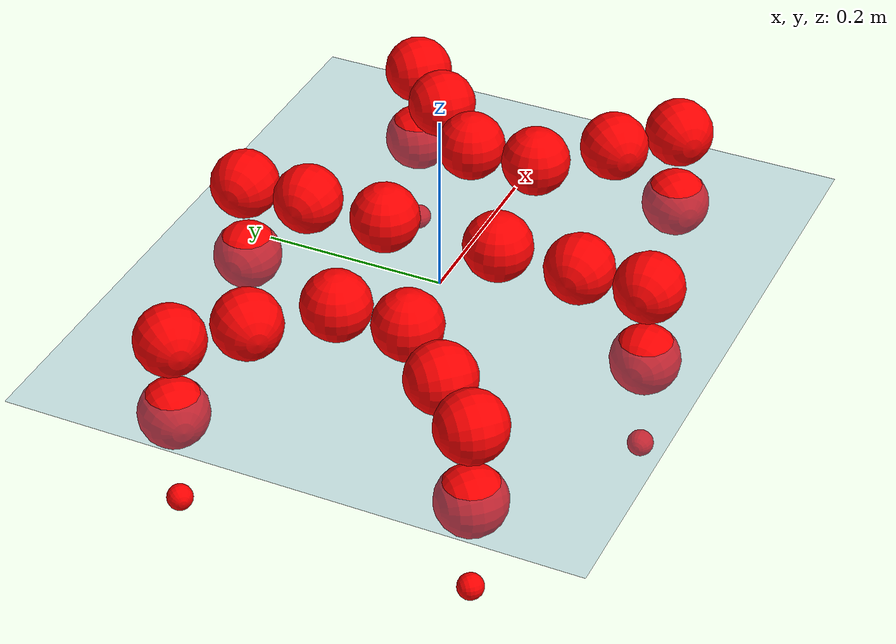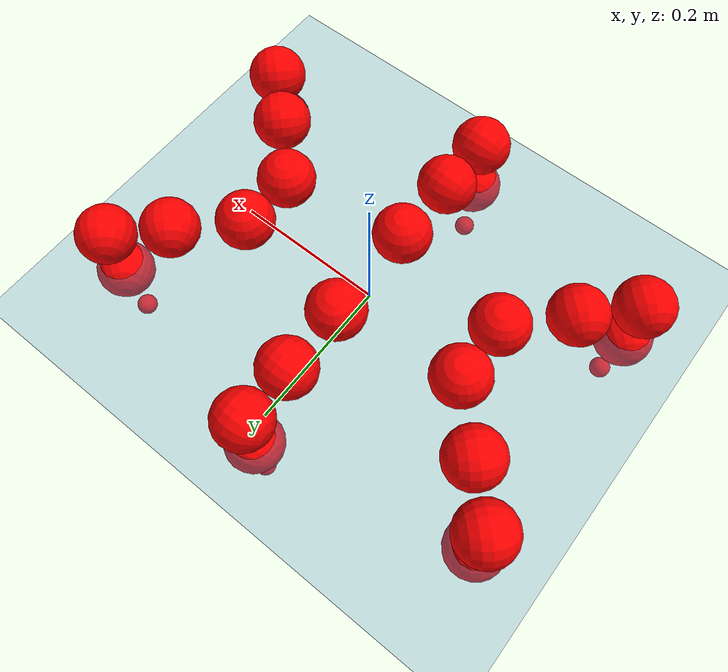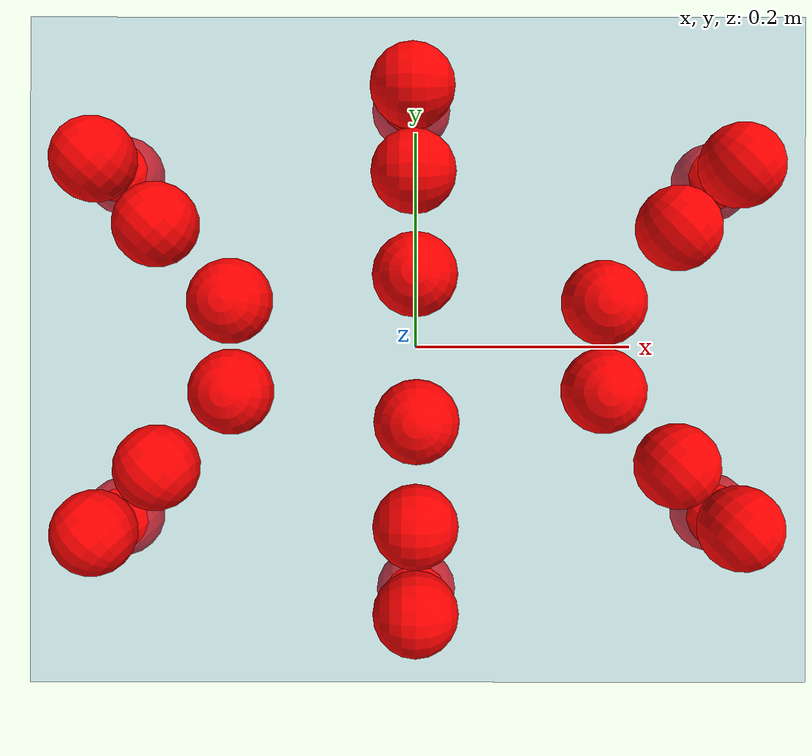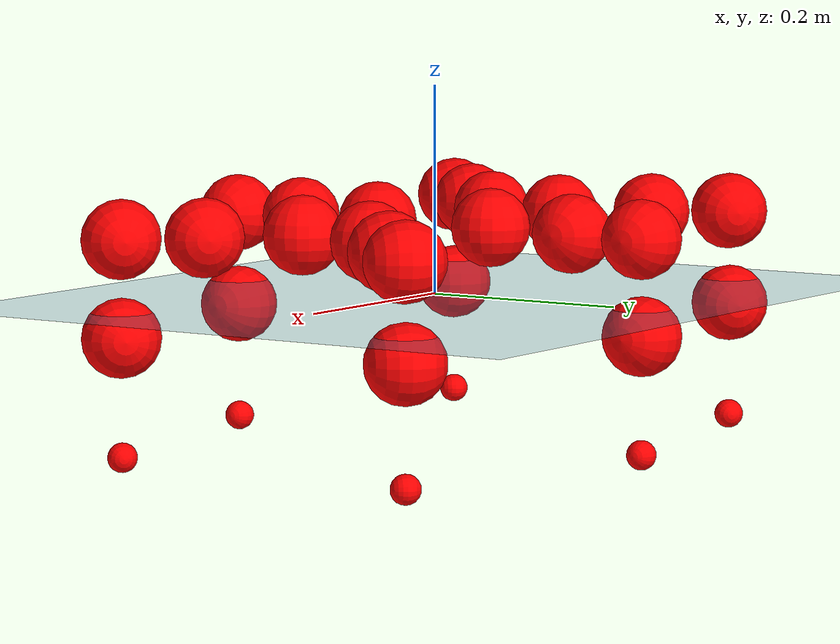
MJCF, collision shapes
<mujoco model="Golem">
  <compiler angle="radian" assetdir="assets" balanceinertia="true" inertiafromgeom="false"/>

  <option timestep="0.005" density="1.2" viscosity="2e-05"/>

  <size nkey="1"/>

  <visual>
    <quality shadowsize="8192"/>
    <map shadowclip="0.5"/>
  </visual>

  <default>
    <default class="/">
      <joint armature="0.01" damping="0.01" frictionloss="0.01"/>
      <geom contype="0" conaffinity="0" group="1" solref="-1000 -80"/>
      <site size="0.01 0.005 0.005" group="5"/>
      <general forcelimited="true" biastype="affine" gainprm="25" biasprm="0 -25 -0.5"/>
      <default class="visual">
        <geom type="mesh" group="2"/>
      </default>
      <default class="collision">
        <geom group="3"/>
      </default>
      <default class="foot">
        <geom size="0.01 0 0" condim="6" group="4" priority="1" solimp="0.015 1 0.01"/>
      </default>
      <default class="reward_collision_sphere">
        <geom group="5" rgba="1 0 0 1"/>
      </default>
    </default>
  </default>

  <asset>
    <texture type="skybox" colorspace="auto" name="//unnamed_texture_0" builtin="gradient" rgb1="0.95 0.95 0.95" rgb2="0.95 0.95 0.95" width="100" height="600"/>
    <texture type="2d" colorspace="auto" name="texplane" builtin="checker" rgb1="0.345 0.575 0.748" rgb2="0.345 0.575 0.748" markrgb="1 1 1" width="512" height="512"/>
    <material name="MatPlane" class="/" texture="texplane" texuniform="true" texrepeat="2 2" specular="0.9"/>
    <mesh name="body" class="/" file="body.stl" scale="0.001 0.001 0.001"/>
    <mesh name="coxa" class="/" file="coxa.stl" scale="0.001 0.001 0.001"/>
    <mesh name="femur" class="/" file="femur.stl" scale="0.001 0.001 0.001"/>
    <mesh name="tibia" class="/" file="tibia.stl" scale="0.001 0.001 0.001"/>
    <mesh name="tarsus" class="/" file="tarsus.stl" scale="0.001 0.001 0.001"/>
  </asset>

  <worldbody>
    <geom name="floor" class="/" size="100 100 0.125" type="plane" group="0" material="MatPlane"/>
    <light name="toplight_shadow" class="/" pos="0 0 5" dir="0.0990148 0.0990148 -0.990148" type="directional" ambient="0.04 0.04 0.04" diffuse="0.55 0.55 0.55" specular="0.12 0.12 0.12"/>
    <light name="toplight_fill" class="/" pos="0 0 5" dir="0.0990148 0.0990148 -0.990148" type="directional" castshadow="false" ambient="0.04 0.04 0.04" diffuse="0.3 0.3 0.3" specular="0.08 0.08 0.08"/>
    <body name="trunk" pos="0.000617159 -0.000907827 -0.0009057" quat="1 -2.19487e-05 -4.01772e-06 -2.32079e-05">
      <inertial pos="0.000674559 0.000183125 -0.00360801" quat="1 0.000315394 -0.00066989 -0.000523762" mass="3.01445" diaginertia="0.0119819 0.00192651 0.0133109"/>
      <joint name="//unnamed_joint_0" type="free"/>
      <geom name="//unnamed_geom_1" class="/" pos="0 0 0.0678438" quat="1 0 0 0" type="mesh" rgba="0.9 0.9 0.9 1" mesh="body"/>
      <site name="imu" class="/" pos="0.136018 0.000463663 0.106274" size="0.00939299"/>
      <camera name="track" class="/" pos="0 -1.44391 0" quat="0.707107 0.707107 0 0" mode="trackcom"/>
      <camera name="ego_camera" class="/" pos="0.134665 0 0.106006" quat="-0.5 -0.5 0.5 0.5"/>
      <body name="coxa_RR" pos="-0.183387 -0.0604905 0.0678731" quat="0.382829 3.25901e-05 -0.000189121 -0.923819">
        <inertial pos="-0.000302147 -0.000834822 0.00135519" quat="0.999994 7.42247e-05 -0.000436414 0.00338819" mass="0.164995" diaginertia="0.0121132 0.00199044 0.0135569"/>
        <joint name="coxa_joint_RR" class="/" pos="0 0 0" axis="-0.00338884 0.0038886 -0.999987" range="-3.13567 3.13874" armature="0.0094452" damping="0.00585904" frictionloss="0.00936672"/>
        <geom name="//unnamed_geom_2" class="/" type="mesh" rgba="0.2 0.2 0.2 1" mesh="coxa"/>
        <geom name="//unnamed_geom_3" class="reward_collision_sphere" size="0.037572" pos="-0.0310766 0 0"/>
        <body name="femur_RR" pos="0.0614038 0.00092 0.000326715" quat="0.50001 -0.499969 0.499863 0.500158">
          <inertial pos="0.000849962 0.000384877 -4.21375e-05" quat="1 2.79002e-06 -5.10867e-05 6.44114e-05" mass="0.166031" diaginertia="0.0119572 0.00196801 0.0136144"/>
          <joint name="femur_joint_RR" class="/" pos="0 0 0" axis="-0.000115261 9.1253e-05 -1" range="-3.1403 3.15301" armature="0.00926619" damping="0.000965069" frictionloss="0.00931039"/>
          <geom name="//unnamed_geom_4" class="/" type="mesh" rgba="0.9 0.9 0.9 1" mesh="femur"/>
          <geom name="//unnamed_geom_5" class="reward_collision_sphere" size="0.037572"/>
          <body name="tibia_RR" pos="0.000906787 -0.0792325 0.00143329" quat="0.000272281 1 -9.46971e-05 3.35605e-05">
            <inertial pos="2.9108e-05 -0.000256049 0.000271452" quat="1 -0.00024202 -0.000415729 -0.00036034" mass="0.166727" diaginertia="0.0120567 0.00197874 0.0136844"/>
            <joint name="tibia_joint_RR" class="/" pos="0 0 0" axis="-0.00082288 -0.000750599 0.999999" range="-3.15374 3.12075" armature="0.00916325" damping="0.000636849" frictionloss="0.0093947"/>
            <geom name="//unnamed_geom_6" class="/" type="mesh" rgba="0.2 0.2 0.2 1" mesh="tibia"/>
            <geom name="//unnamed_geom_7" class="reward_collision_sphere" size="0.037572"/>
            <body name="tarsus_RR" pos="0.0909067 0.000323665 -0.000312325" quat="1 -0.000177351 -1.07493e-05 1.38225e-05">
              <inertial pos="0.0635466 0.000723006 -0.000869995" quat="0.500508 0.498894 0.499776 0.50082" mass="0.166604" diaginertia="0.011977 0.00194515 0.0134198"/>
              <joint name="tarsus_joint_RR" class="/" pos="0 0 0" axis="0.00737078 0.00314346 0.999968" stiffness="0.00187089" range="-3.13764 3.1213" armature="0.00929626" damping="0.0425576" frictionloss="0.0097801"/>
              <geom name="//unnamed_geom_8" class="/" type="mesh" rgba="0.9 0.9 0.9 1" mesh="tarsus"/>
              <geom name="foot_1" class="foot" size="0.00921947" pos="0.116019 0 0" quat="0 -0.707107 0 0.707107"/>
              <geom name="//unnamed_geom_10" class="reward_collision_sphere" size="0.037572"/>
              <geom name="//unnamed_geom_11" class="reward_collision_sphere" size="0.0140895" pos="0.111358 0 0"/>
              <site name="foot_1" class="foot" pos="0.116019 0 0" quat="0 -0.707107 0 0.707107" size="0.00939299"/>
            </body>
          </body>
        </body>
      </body>
      <body name="coxa_RM" pos="0.000144831 -0.0960125 0.0680541" quat="0.707047 -3.95465e-05 0.000413299 -0.707167">
        <inertial pos="-0.000410611 6.26914e-05 0.00131618" quat="0.999993 0.00142372 -0.00294992 0.00185549" mass="0.167164" diaginertia="0.0120605 0.00194246 0.0132534"/>
        <joint name="coxa_joint_RM" class="/" pos="0 0 0" axis="0.00176347 0.00300942 -0.999994" range="-3.12969 3.14751" armature="0.00927902" damping="0.0103329" frictionloss="0.00880502"/>
        <geom name="//unnamed_geom_12" class="/" type="mesh" rgba="0.2 0.2 0.2 1" mesh="coxa"/>
        <geom name="//unnamed_geom_13" class="reward_collision_sphere" size="0.037572" pos="-0.0310766 0 0"/>
        <body name="femur_RM" pos="0.0603013 -0.000827279 -0.000342271" quat="0.500046 -0.499995 0.500131 0.499827">
          <inertial pos="0.000381186 0.000411069 -7.53923e-05" quat="0.999999 0.000387394 0.000167368 0.00141531" mass="0.1682" diaginertia="0.0120583 0.00199013 0.0135674"/>
          <joint name="femur_joint_RM" class="/" pos="0 0 0" axis="0.00193884 0.00449114 -0.999988" range="-3.14124 3.14116" armature="0.00976561" damping="0.00818442" frictionloss="0.00942408"/>
          <geom name="//unnamed_geom_14" class="/" type="mesh" rgba="0.9 0.9 0.9 1" mesh="femur"/>
          <geom name="//unnamed_geom_15" class="reward_collision_sphere" size="0.037572"/>
          <body name="tibia_RM" pos="0.000682197 -0.07623 0.000163343" quat="7.67755e-05 1 2.48036e-05 -7.89211e-05">
            <inertial pos="-0.000684378 -0.000934545 -0.000280274" quat="1 0.000432256 0.000338792 0.00061942" mass="0.166412" diaginertia="0.0119626 0.00199351 0.0133714"/>
            <joint name="tibia_joint_RM" class="/" pos="0 0 0" axis="0.000477631 -0.000275289 1" range="-3.14315 3.16339" armature="0.00945405" damping="0.010799" frictionloss="0.00958321"/>
            <geom name="//unnamed_geom_16" class="/" type="mesh" rgba="0.2 0.2 0.2 1" mesh="tibia"/>
            <geom name="//unnamed_geom_17" class="reward_collision_sphere" size="0.037572"/>
            <body name="tarsus_RM" pos="0.0909635 -0.000304489 -0.000234303" quat="1 6.41975e-05 1.53023e-05 4.39987e-05">
              <inertial pos="0.0625532 0.000809848 -0.000224256" quat="0.498548 0.501341 0.502307 0.497791" mass="0.16717" diaginertia="0.0119121 0.0019828 0.0134493"/>
              <joint name="tarsus_joint_RM" class="/" pos="0 0 0" axis="-0.000593935 -0.000272789 1" range="-3.15631 3.13537" armature="0.0090635" damping="0.00795004" frictionloss="0.0092954"/>
              <geom name="//unnamed_geom_18" class="/" type="mesh" rgba="0.9 0.9 0.9 1" mesh="tarsus"/>
              <geom name="foot_2" class="foot" size="0.00949437" pos="0.116019 0 0" quat="0 -0.707107 0 0.707107"/>
              <geom name="//unnamed_geom_20" class="reward_collision_sphere" size="0.037572"/>
              <geom name="//unnamed_geom_21" class="reward_collision_sphere" size="0.0140895" pos="0.111358 0 0"/>
              <site name="foot_2" class="foot" pos="0.116019 0 0" quat="0 -0.707107 0 0.707107" size="0.00939299"/>
            </body>
          </body>
        </body>
      </body>
      <body name="coxa_RF" pos="0.184831 -0.0595057 0.0688192" quat="0.923857 4.32182e-06 -0.00020167 -0.382737">
        <inertial pos="0.000181275 -0.00102388 -0.000384052" quat="1 1.49929e-05 0.000383628 -9.96155e-06" mass="0.16664" diaginertia="0.0119465 0.00196227 0.0135578"/>
        <joint name="coxa_joint_RF" class="/" pos="0 0 0" axis="-0.00110234 -0.000480914 -0.999999" range="-3.14407 3.14479" armature="0.00933494" damping="0.0147134" frictionloss="0.00927165"/>
        <geom name="//unnamed_geom_22" class="/" type="mesh" rgba="0.2 0.2 0.2 1" mesh="coxa"/>
        <geom name="//unnamed_geom_23" class="reward_collision_sphere" size="0.037572" pos="-0.0310766 0 0"/>
        <body name="femur_RF" pos="0.0608002 -0.000746395 -0.000923354" quat="0.499975 -0.500022 0.499992 0.500011">
          <inertial pos="-0.000433928 0.000596994 -0.000377842" quat="0.999995 0.00164229 4.02177e-05 -0.00285823" mass="0.167597" diaginertia="0.0119266 0.00200303 0.0135811"/>
          <joint name="femur_joint_RF" class="/" pos="0 0 0" axis="-3.56518e-05 0.000311401 -1" range="-3.15393 3.1368" armature="0.00942148" damping="0.00752671" frictionloss="0.00918792"/>
          <geom name="//unnamed_geom_24" class="/" type="mesh" rgba="0.9 0.9 0.9 1" mesh="femur"/>
          <geom name="//unnamed_geom_25" class="reward_collision_sphere" size="0.037572"/>
          <body name="tibia_RF" pos="-6.07983e-05 -0.077545 0.000670598" quat="-4.59695e-05 1 8.50141e-06 5.70113e-05">
            <inertial pos="-0.000897297 0.000602704 -0.000417792" quat="1 3.91499e-05 -0.000108001 -3.24606e-05" mass="0.16746" diaginertia="0.0121324 0.00195106 0.0134144"/>
            <joint name="tibia_joint_RF" class="/" pos="0 0 0" axis="0.000951089 -0.00207308 0.999997" stiffness="0.000410579" range="-3.14449 3.12191" armature="0.0095469" damping="0.00837607" frictionloss="0.00936063"/>
            <geom name="//unnamed_geom_26" class="/" type="mesh" rgba="0.2 0.2 0.2 1" mesh="tibia"/>
            <geom name="//unnamed_geom_27" class="reward_collision_sphere" size="0.037572"/>
            <body name="tarsus_RF" pos="0.0916049 0.000201774 0.000280169" quat="1 0.00016396 -0.000168491 0.000210602">
              <inertial pos="0.061483 0.000634235 5.49848e-05" quat="0.499871 0.500319 0.498971 0.500838" mass="0.166021" diaginertia="0.012015 0.00195132 0.0132469"/>
              <joint name="tarsus_joint_RF" class="/" pos="0 0 0" axis="-0.000562183 0.000355485 1" range="-3.12923 3.13159" armature="0.00895898" damping="0.000210106" frictionloss="0.00980239"/>
              <geom name="//unnamed_geom_28" class="/" type="mesh" rgba="0.9 0.9 0.9 1" mesh="tarsus"/>
              <geom name="foot_3" class="foot" size="0.00918358" pos="0.116019 0 0" quat="0 -0.707107 0 0.707107"/>
              <geom name="//unnamed_geom_30" class="reward_collision_sphere" size="0.037572"/>
              <geom name="//unnamed_geom_31" class="reward_collision_sphere" size="0.0140895" pos="0.111358 0 0"/>
              <site name="foot_3" class="foot" pos="0.116019 0 0" quat="0 -0.707107 0 0.707107" size="0.00939299"/>
            </body>
          </body>
        </body>
      </body>
      <body name="coxa_LR" pos="-0.184471 0.0624421 0.0681992" quat="0.382632 -9.43274e-05 2.31372e-06 0.923901">
        <inertial pos="-0.000252716 -0.00103488 -0.000556912" quat="0.999992 -0.00301161 0.0022671 -0.00133474" mass="0.16599" diaginertia="0.0118091 0.00197472 0.0132621"/>
        <joint name="coxa_joint_LR" class="/" pos="0 0 0" axis="0.00332804 -0.00439885 -0.999985" range="-3.14232 3.15589" armature="0.0098226" damping="0.00677485" frictionloss="0.00954804"/>
        <geom name="//unnamed_geom_32" class="/" type="mesh" rgba="0.2 0.2 0.2 1" mesh="coxa"/>
        <geom name="//unnamed_geom_33" class="reward_collision_sphere" size="0.037572" pos="-0.0310766 0 0"/>
        <body name="femur_LR" pos="0.0617787 -0.00134174 -0.000350299" quat="0.49999 -0.500038 0.499971 0.5">
          <inertial pos="0.00032639 -0.000203962 0.000117464" quat="0.99999 -0.00209009 0.00341205 0.00221159" mass="0.165567" diaginertia="0.011956 0.00195389 0.0134161"/>
          <joint name="femur_joint_LR" class="/" pos="0 0 0" axis="0.00251578 0.00160557 0.999996" stiffness="0.000296247" range="-3.13874 3.14358" armature="0.00964021" damping="0.00531081" frictionloss="0.00893569"/>
          <geom name="//unnamed_geom_34" class="/" type="mesh" rgba="0.9 0.9 0.9 1" mesh="femur"/>
          <geom name="//unnamed_geom_35" class="reward_collision_sphere" size="0.037572"/>
          <body name="tibia_LR" pos="0.000712817 -0.0790504 -0.00165303" quat="0.000169253 1 -1.30657e-05 5.91848e-05">
            <inertial pos="-0.000293092 -0.000115835 7.21167e-05" quat="0.999997 0.00212885 -0.000958022 -9.30787e-05" mass="0.163667" diaginertia="0.0117535 0.00193777 0.0132106"/>
            <joint name="tibia_joint_LR" class="/" pos="0 0 0" axis="-0.00454676 0.00391009 -0.999982" range="-3.12157 3.14591" armature="0.00946283" damping="0.00463404" frictionloss="0.00929672"/>
            <geom name="//unnamed_geom_36" class="/" type="mesh" rgba="0.2 0.2 0.2 1" mesh="tibia"/>
            <geom name="//unnamed_geom_37" class="reward_collision_sphere" size="0.037572"/>
            <body name="tarsus_LR" pos="0.0914833 0.000802568 0.00124585" quat="1 8.89712e-05 0.000139133 0.000280053">
              <inertial pos="0.0636059 0.000686859 -0.000818275" quat="0.499912 0.500202 0.499787 0.500099" mass="0.167283" diaginertia="0.0119149 0.0019739 0.0134028"/>
              <joint name="tarsus_joint_LR" class="/" pos="0 0 0" axis="0.00179016 0.00116255 -0.999998" range="-3.13618 3.14085" armature="0.00938547" damping="0.00311783" frictionloss="0.00925783"/>
              <geom name="//unnamed_geom_38" class="/" type="mesh" rgba="0.9 0.9 0.9 1" mesh="tarsus"/>
              <geom name="foot_4" class="foot" size="0.00888682" pos="0.116019 0 0" quat="0.707107 0 -0.707107 0"/>
              <geom name="//unnamed_geom_40" class="reward_collision_sphere" size="0.037572"/>
              <geom name="//unnamed_geom_41" class="reward_collision_sphere" size="0.0140895" pos="0.111358 0 0"/>
              <site name="foot_4" class="foot" pos="0.116019 0 0" quat="0.707107 0 -0.707107 0" size="0.00939299"/>
            </body>
          </body>
        </body>
      </body>
      <body name="coxa_LM" pos="-0.00130152 0.0950447 0.0678961" quat="0.707106 -8.57232e-05 0.000259154 0.707108">
        <inertial pos="0.000396328 0.000361646 0.000618595" quat="0.999991 -0.00351067 0.00144525 0.00182156" mass="0.166463" diaginertia="0.012112 0.00197583 0.0134208"/>
        <joint name="coxa_joint_LM" class="/" pos="0 0 0" axis="-0.00056126 -0.000971434 -0.999999" range="-3.14156 3.13371" armature="0.00901578" damping="0.00933727" frictionloss="0.00922586"/>
        <geom name="//unnamed_geom_42" class="/" type="mesh" rgba="0.2 0.2 0.2 1" mesh="coxa"/>
        <geom name="//unnamed_geom_43" class="reward_collision_sphere" size="0.037572" pos="-0.0310766 0 0"/>
        <body name="femur_LM" pos="0.0587025 0.00139103 -0.000941855" quat="0.499919 -0.500246 0.499617 0.500218">
          <inertial pos="-0.000939654 2.56334e-05 0.00106327" quat="0.999996 -0.00271369 0.000922781 0.00063773" mass="0.166212" diaginertia="0.0118231 0.00193602 0.013347"/>
          <joint name="femur_joint_LM" class="/" pos="0 0 0" axis="0.000164971 0.000872546 1" range="-3.13713 3.14552" armature="0.00899839" damping="0.00155214" frictionloss="0.00934853"/>
          <geom name="//unnamed_geom_44" class="/" type="mesh" rgba="0.9 0.9 0.9 1" mesh="femur"/>
          <geom name="//unnamed_geom_45" class="reward_collision_sphere" size="0.037572"/>
          <body name="tibia_LM" pos="0.0012883 -0.0752285 0.00084799" quat="-0.000475217 1 -0.000305252 0.000163097">
            <inertial pos="0.000340512 -0.0017072 -0.000261992" quat="0.999992 0.000807149 -0.000841185 0.00390532" mass="0.166586" diaginertia="0.0119038 0.00196712 0.0133619"/>
            <joint name="tibia_joint_LM" class="/" pos="0 0 0" axis="0.00141378 -0.00112013 -0.999998" range="-3.13602 3.13908" armature="0.00950365" damping="0" frictionloss="0.00981736"/>
            <geom name="//unnamed_geom_46" class="/" type="mesh" rgba="0.2 0.2 0.2 1" mesh="tibia"/>
            <geom name="//unnamed_geom_47" class="reward_collision_sphere" size="0.037572"/>
            <body name="tarsus_LM" pos="0.0909183 -0.000243732 -0.00170823" quat="1 -0.000223735 0.000411209 -0.000317044">
              <inertial pos="0.0632768 0.000359248 0.000773827" quat="0.499965 0.500048 0.500091 0.499895" mass="0.162077" diaginertia="0.0118531 0.00192549 0.0131207"/>
              <joint name="tarsus_joint_LM" class="/" pos="0 0 0" axis="0.00110908 0.000772904 -0.999999" range="-3.11875 3.14486" armature="0.00949246" damping="0" frictionloss="0.00913568"/>
              <geom name="//unnamed_geom_48" class="/" type="mesh" rgba="0.9 0.9 0.9 1" mesh="tarsus"/>
              <geom name="foot_5" class="foot" size="0.0092572" pos="0.116019 0 0" quat="0.707107 0 -0.707107 0"/>
              <geom name="//unnamed_geom_50" class="reward_collision_sphere" size="0.037572"/>
              <geom name="//unnamed_geom_51" class="reward_collision_sphere" size="0.0140895" pos="0.111358 0 0"/>
              <site name="foot_5" class="foot" pos="0.116019 0 0" quat="0.707107 0 -0.707107 0" size="0.00939299"/>
            </body>
          </body>
        </body>
      </body>
      <body name="coxa_LF" pos="0.185427 0.0610689 0.0672805" quat="0.923872 1.39559e-05 9.00403e-05 0.382703">
        <inertial pos="0.000277105 -0.000200343 0.000808096" quat="0.999993 -0.00301598 -0.00174211 -0.00114629" mass="0.166108" diaginertia="0.0117747 0.00194836 0.0132025"/>
        <joint name="coxa_joint_LF" class="/" pos="0 0 0" axis="-0.000549716 -0.00314815 -0.999995" range="-3.12335 3.15748" armature="0.00946552" damping="0.000708017" frictionloss="0.00976214"/>
        <geom name="//unnamed_geom_52" class="/" type="mesh" rgba="0.2 0.2 0.2 1" mesh="coxa"/>
        <geom name="//unnamed_geom_53" class="reward_collision_sphere" size="0.037572" pos="-0.0310766 0 0"/>
        <body name="femur_LF" pos="0.0612827 -8.55978e-05 -0.000221564" quat="0.50011 -0.500128 0.499765 0.499997">
          <inertial pos="0.000865895 -0.000223939 -0.00038603" quat="0.999999 -3.95122e-05 5.26095e-05 0.00113092" mass="0.164479" diaginertia="0.0119281 0.00195416 0.0135099"/>
          <joint name="femur_joint_LF" class="/" pos="0 0 0" axis="0.00283937 -0.000335053 0.999996" range="-3.15703 3.14879" armature="0.00936655" damping="0" frictionloss="0.00924925"/>
          <geom name="//unnamed_geom_54" class="/" type="mesh" rgba="0.9 0.9 0.9 1" mesh="femur"/>
          <geom name="//unnamed_geom_55" class="reward_collision_sphere" size="0.037572"/>
          <body name="tibia_LF" pos="0.000758806 -0.0778776 -0.000343549" quat="-4.1855e-05 1 2.7224e-05 -4.92939e-05">
            <inertial pos="5.1543e-06 -0.000467468 -0.00067647" quat="1 0.000555 -0.000232976 -0.000220147" mass="0.167175" diaginertia="0.0119004 0.00195481 0.0133604"/>
            <joint name="tibia_joint_LF" class="/" pos="0 0 0" axis="-0.00179221 0.000117834 -0.999998" range="-3.13759 3.13538" armature="0.00985022" damping="0.00336105" frictionloss="0.0089837"/>
            <geom name="//unnamed_geom_56" class="/" type="mesh" rgba="0.2 0.2 0.2 1" mesh="tibia"/>
            <geom name="//unnamed_geom_57" class="reward_collision_sphere" size="0.037572"/>
            <body name="tarsus_LF" pos="0.0906606 1.32745e-05 -0.000358675" quat="1 -0.000140494 0.000135393 -0.000178643">
              <inertial pos="0.063018 1.51962e-05 0.000947973" quat="0.500661 0.501803 0.497464 0.500062" mass="0.164149" diaginertia="0.0119175 0.00195627 0.0132647"/>
              <joint name="tarsus_joint_LF" class="/" pos="0 0 0" axis="-0.00291535 -0.00523507 -0.999982" stiffness="0.0315777" range="-3.12883 3.12066" armature="0.00941338" damping="0.0252693" frictionloss="0.00949403"/>
              <geom name="//unnamed_geom_58" class="/" type="mesh" rgba="0.9 0.9 0.9 1" mesh="tarsus"/>
              <geom name="foot_6" class="foot" size="0.00931377" pos="0.116019 0 0" quat="0.707107 0 -0.707107 0"/>
              <geom name="//unnamed_geom_60" class="reward_collision_sphere" size="0.037572"/>
              <geom name="//unnamed_geom_61" class="reward_collision_sphere" size="0.0140895" pos="0.111358 0 0"/>
              <site name="foot_6" class="foot" pos="0.116019 0 0" quat="0.707107 0 -0.707107 0" size="0.00939299"/>
            </body>
          </body>
        </body>
      </body>
    </body>
  </worldbody>

  <contact>
    <pair class="/" geom1="floor" geom2="foot_1" name="//unnamed_contact_0"/>
    <pair class="/" geom1="floor" geom2="foot_2" name="//unnamed_contact_1"/>
    <pair class="/" geom1="floor" geom2="foot_3" name="//unnamed_contact_2"/>
    <pair class="/" geom1="floor" geom2="foot_4" name="//unnamed_contact_3"/>
    <pair class="/" geom1="floor" geom2="foot_5" name="//unnamed_contact_4"/>
    <pair class="/" geom1="floor" geom2="foot_6" name="//unnamed_contact_5"/>
  </contact>

  <actuator>
    <general name="coxa_joint_RR" class="/" joint="coxa_joint_RR" forcerange="-6.87875 6.87875" gainprm="22.6609" biasprm="0 -22.6609 -0.483595"/>
    <general name="femur_joint_RR" class="/" joint="femur_joint_RR" forcerange="-6.8287 6.8287" gainprm="22.6609" biasprm="0 -22.6609 -0.483595"/>
    <general name="tibia_joint_RR" class="/" joint="tibia_joint_RR" forcerange="-6.88617 6.88617" gainprm="22.6609" biasprm="0 -22.6609 -0.483595"/>
    <general name="tarsus_joint_RR" class="/" joint="tarsus_joint_RR" forcerange="-6.72874 6.72874" gainprm="22.6609" biasprm="0 -22.6609 -0.483595"/>
    <general name="coxa_joint_RM" class="/" joint="coxa_joint_RM" forcerange="-6.65334 6.65334" gainprm="22.6609" biasprm="0 -22.6609 -0.483595"/>
    <general name="femur_joint_RM" class="/" joint="femur_joint_RM" forcerange="-6.73307 6.73307" gainprm="22.6609" biasprm="0 -22.6609 -0.483595"/>
    <general name="tibia_joint_RM" class="/" joint="tibia_joint_RM" forcerange="-7.08633 7.08633" gainprm="22.6609" biasprm="0 -22.6609 -0.483595"/>
    <general name="tarsus_joint_RM" class="/" joint="tarsus_joint_RM" forcerange="-6.85344 6.85344" gainprm="22.6609" biasprm="0 -22.6609 -0.483595"/>
    <general name="coxa_joint_RF" class="/" joint="coxa_joint_RF" forcerange="-6.73484 6.73484" gainprm="22.6609" biasprm="0 -22.6609 -0.483595"/>
    <general name="femur_joint_RF" class="/" joint="femur_joint_RF" forcerange="-7.09467 7.09467" gainprm="22.6609" biasprm="0 -22.6609 -0.483595"/>
    <general name="tibia_joint_RF" class="/" joint="tibia_joint_RF" forcerange="-6.60354 6.60354" gainprm="22.6609" biasprm="0 -22.6609 -0.483595"/>
    <general name="tarsus_joint_RF" class="/" joint="tarsus_joint_RF" forcerange="-6.62858 6.62858" gainprm="22.6609" biasprm="0 -22.6609 -0.483595"/>
    <general name="coxa_joint_LR" class="/" joint="coxa_joint_LR" forcerange="-6.86326 6.86326" gainprm="22.6609" biasprm="0 -22.6609 -0.483595"/>
    <general name="femur_joint_LR" class="/" joint="femur_joint_LR" forcerange="-6.78391 6.78391" gainprm="22.6609" biasprm="0 -22.6609 -0.483595"/>
    <general name="tibia_joint_LR" class="/" joint="tibia_joint_LR" forcerange="-6.93625 6.93625" gainprm="22.6609" biasprm="0 -22.6609 -0.483595"/>
    <general name="tarsus_joint_LR" class="/" joint="tarsus_joint_LR" forcerange="-6.78109 6.78109" gainprm="22.6609" biasprm="0 -22.6609 -0.483595"/>
    <general name="coxa_joint_LM" class="/" joint="coxa_joint_LM" forcerange="-6.80339 6.80339" gainprm="22.6609" biasprm="0 -22.6609 -0.483595"/>
    <general name="femur_joint_LM" class="/" joint="femur_joint_LM" forcerange="-6.87038 6.87038" gainprm="22.6609" biasprm="0 -22.6609 -0.483595"/>
    <general name="tibia_joint_LM" class="/" joint="tibia_joint_LM" forcerange="-6.88218 6.88218" gainprm="22.6609" biasprm="0 -22.6609 -0.483595"/>
    <general name="tarsus_joint_LM" class="/" joint="tarsus_joint_LM" forcerange="-6.77902 6.77902" gainprm="22.6609" biasprm="0 -22.6609 -0.483595"/>
    <general name="coxa_joint_LF" class="/" joint="coxa_joint_LF" forcerange="-6.57324 6.57324" gainprm="22.6609" biasprm="0 -22.6609 -0.483595"/>
    <general name="femur_joint_LF" class="/" joint="femur_joint_LF" forcerange="-6.87108 6.87108" gainprm="22.6609" biasprm="0 -22.6609 -0.483595"/>
    <general name="tibia_joint_LF" class="/" joint="tibia_joint_LF" forcerange="-6.96912 6.96912" gainprm="22.6609" biasprm="0 -22.6609 -0.483595"/>
    <general name="tarsus_joint_LF" class="/" joint="tarsus_joint_LF" forcerange="-7.0921 7.0921" gainprm="22.6609" biasprm="0 -22.6609 -0.483595"/>
  </actuator>

  <sensor>
    <gyro site="imu" name="imu_angular_velocity"/>
    <velocimeter site="imu" name="imu_linear_velocity"/>
    <framelinvel objtype="site" objname="foot_1" name="foot_1_global_linear_velocity"/>
    <framelinvel objtype="site" objname="foot_2" name="foot_2_global_linear_velocity"/>
    <framelinvel objtype="site" objname="foot_3" name="foot_3_global_linear_velocity"/>
    <framelinvel objtype="site" objname="foot_4" name="foot_4_global_linear_velocity"/>
    <framelinvel objtype="site" objname="foot_5" name="foot_5_global_linear_velocity"/>
    <framelinvel objtype="site" objname="foot_6" name="foot_6_global_linear_velocity"/>
  </sensor>

  <keyframe>
    <key name="home" qpos="0 0 0.1457 1 0 0 0 0 0 0 0 0 0 0 0 0 0 0 0 0 0 0 0 0 0 0 0 0 0 0 0"/>
  </keyframe>
</mujoco>
